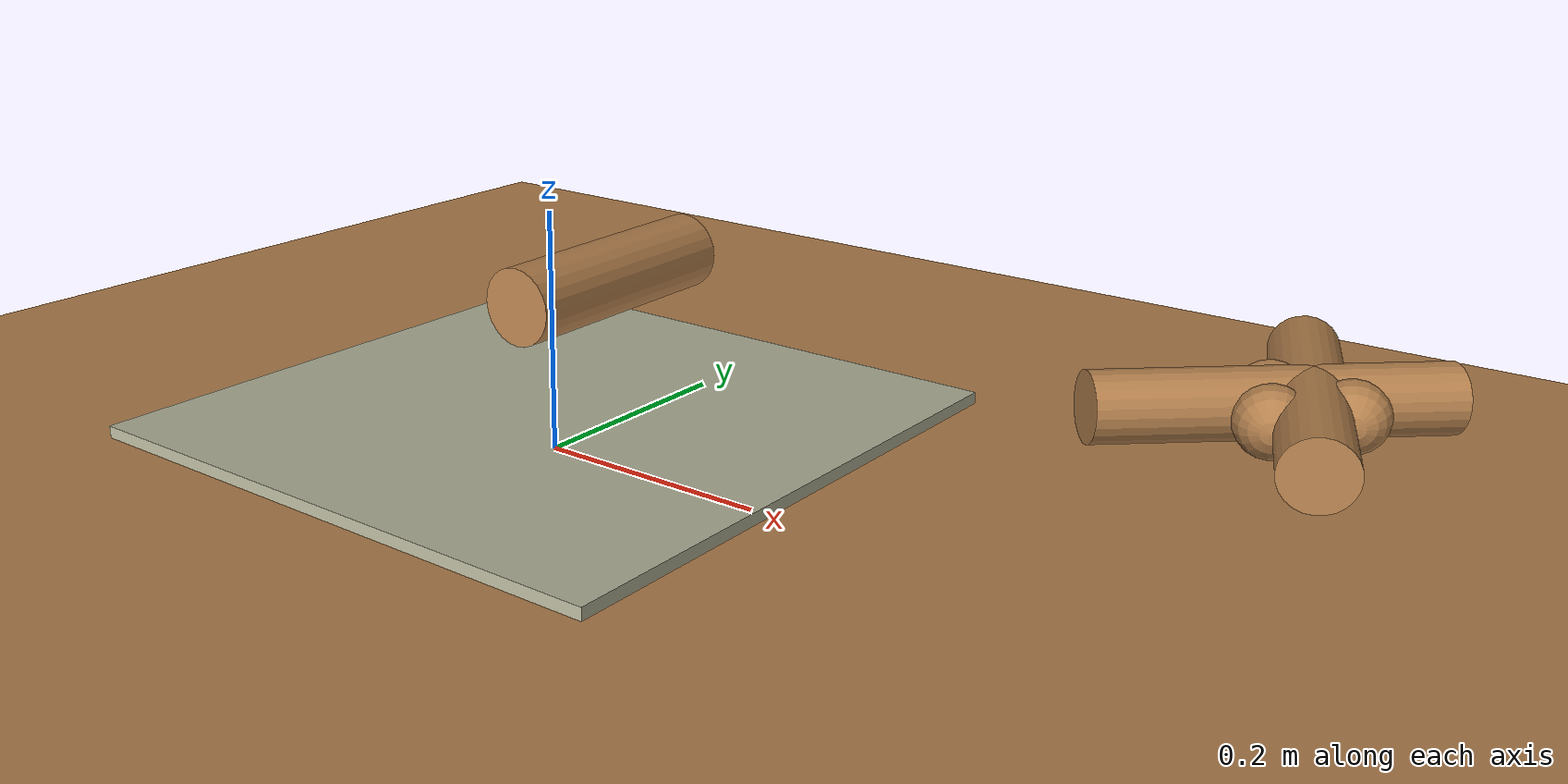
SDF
<?xml version="1.0" encoding="UTF-8"?>
<sdf version="1.4">
	<world name="default">
    <gui fullscreen='0'>
      <camera name='gzclient_camera'>
        <pose frame=''>0.59 -0.3 0.4 0 0.4 2.7</pose>
        <view_controller>orbit</view_controller>
        <projection_type>perspective</projection_type>
      </camera>
    </gui>
    <physics type="ode">
      <gravity>0.000000 0.000000 0.00</gravity>
      <ode>
        <solver>
         <type>quick</type>
         <iters>50</iters>
         <precon_iters>0</precon_iters>
         <sor>1.300000</sor>
       </solver>
       <constraints>
         <!-- cfm: Between 0.0001 and 0.001 works well (0.001 allows a bit too much elasticity)-->
         <!-- contact_max_correcting_vel: 	Max vel that contacts can generate-->
         <!-- contact_surface_layer: 		Increasing  may improve sensibility-->
       </constraints>
     </ode>
     <max_contacts>1</max_contacts>
   </physics>

   <include>
     <uri>model://sun</uri>
   </include>

   <model name ='table'>
     <static>true</static>
     <pose>0 0 0.01 0 0 0</pose>
     <link name ='table_link'>
      <pose>0 0 0 0 0 0</pose>
      <collision name ='collision'>
       <geometry>
        <box><size>3 3 0.019</size></box>
      </geometry>
    </collision>
    <visual name ='visual'>
     <geometry>
      <box><size>3 3  0.019</size></box>
    </geometry>

    <material><script><uri>file://media/materials/scripts/gazebo.material</uri>
    <name>Gazebo/Wood</name></script></material>
  </visual>

</link>
</model>

<model name ='support'>
 <static>true</static>
 <pose>0.0 0 0.03 0 0 0</pose>
 <link name ='table_link'>
  <pose>0 0 0 0 0 0</pose>
  <collision name ='collision'>
   <geometry><box><size>0.5 0.5 0.01</size></box></geometry>
   <surface>
    <friction><ode><mu>0.1</mu><mu2>0.1</mu2></ode></friction>
    <contact><ode><kp>400000</kp></ode></contact>
  </surface>
</collision>
<visual name ='visual'>
 <geometry>
  <box><size>0.5 0.5 0.01</size></box>
</geometry>

<material><script><uri>file://media/materials/scripts/gazebo.material</uri>
<name>Gazebo/Residential</name></script></material>
</visual>

</link>
</model>

<!-- OBJECT TO GRASP -->
<!-- it has a plugin to have an impedance -->
<model name="cylinderHandle">
  <pose>0.057 0.0 0.157 1.577 0 0</pose>
  <static>false</static>
  <link name="left_wheel">
    <pose>0 0 0 0 0 0</pose>

    <collision name="collision">
      <geometry>
        <cylinder>
          <radius>.03</radius>
          <length>.2</length>
        </cylinder>
      </geometry>
    </collision>

    <inertial>
      <mass>5</mass>
      <inertia>
        <ixx>0.015</ixx>
        <ixy>0</ixy>
        <ixz>0</ixz>
        <iyy>0.015</iyy>
        <iyz>0</iyz>
        <izz>0.001</izz>
      </inertia>
    </inertial>

    <visual name="visual">
      <geometry>
        <cylinder>
          <radius>.03</radius>
          <length>0.2</length>
        </cylinder>S
      </geometry>
      <material><script><uri>file://media/materials/scripts/gazebo.material</uri>
      <name>Gazebo/Wood</name></script></material>
    </visual>
  </link>

  <plugin name="my_object_impedance_plugin" filename="libmy_object_impedance_plugin.so" >
    <topicName> /gazebo/object_impedance2 </topicName>
    <bodyNames>left_wheel</bodyNames>
    <resetThreshold>0.02</resetThreshold>
  </plugin>

  <plugin name="mylinkforce2" filename="libgazebo_ros_force2.so">
    <bodyNames>left_wheel</bodyNames>
  </plugin>

</model>

<!-- weird little shape to grasp. -->
<model name="shapetoExplore3">
  <pose>0.60 -0.08 0.21 0.0 1.57 0</pose>
  <include>
    <uri>model://shapeToExplore3</uri>
  </include>
  <plugin name="my_object_impedance_plugin" filename="libmy_object_impedance_plugin.so" >
    <topicName> /gazebo/object_impedance </topicName>
    <bodyNames> shapetoExplore3::sphere1 </bodyNames>
    <resetThreshold>0.02</resetThreshold>
  </plugin>

    <plugin name="mylinkforce2" filename="libgazebo_ros_force2.so">
    <bodyNames>shapetoExplore3::sphere1</bodyNames>
  </plugin>
</model>

</world>
</sdf>

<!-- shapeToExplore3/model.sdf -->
<sdf version='1.5'>

  <model name ="shapetoExplore3">
   <static>false</static>
   <pose>0.0 0.0 0.0 1.2 0 0</pose>

   <link name ='sphere1'>
    <pose>0 0.0 0.01 0 0 0</pose>
    <collision name ='collision'>
     <geometry><sphere><radius>0.02</radius></sphere></geometry>
   </collision>

     <inertial>
      <mass>0.1</mass>
      <inertia>
        <ixx>0.0001</ixx>
        <ixy>0</ixy>
        <ixz>0</ixz>
        <iyy>0.0001</iyy>
        <iyz>0</iyz>
        <izz>0.0001</izz>
      </inertia>
    </inertial>

   <visual name ='visual'>
     <geometry><sphere><radius>0.02</radius></sphere></geometry>
     <material>
      <script>
       <uri>file://media/materials/scripts/gazebo.material</uri>
       <name>Gazebo/Wood</name>
     </script>
   </material>
 </visual>
</link>

<link name ='sphere2'>
  <pose>0 0.0 0.05 0 0 0</pose>
  <collision name ='collision'>
   <geometry><sphere><radius>0.02</radius></sphere></geometry>
 </collision>

     <inertial>
      <mass>0.1</mass>
      <inertia>
        <ixx>0.0001</ixx>
        <ixy>0</ixy>
        <ixz>0</ixz>
        <iyy>0.0001</iyy>
        <iyz>0</iyz>
        <izz>0.0001</izz>
      </inertia>
    </inertial>

 <visual name ='visual'>
   <geometry><sphere><radius>0.02</radius></sphere></geometry>
   <material>
    <script>
     <uri>file://media/materials/scripts/gazebo.material</uri>
     <name>Gazebo/Wood</name>
   </script>
 </material>
</visual>
</link>

<link name ='cyl1'>
  <pose>0 0.02 0.02 0 0 0</pose>
  <collision name ='collision'>
   <geometry><cylinder><radius>0.02</radius><length>0.2</length></cylinder></geometry>
 </collision>

     <inertial>
      <mass>0.1</mass>
      <inertia>
        <ixx>0.0001</ixx>
        <ixy>0</ixy>
        <ixz>0</ixz>
        <iyy>0.0001</iyy>
        <iyz>0</iyz>
        <izz>0.0001</izz>
      </inertia>
    </inertial>

 <visual name ='visual'>
   <geometry><cylinder><radius>0.02</radius><length>0.2</length></cylinder></geometry>
   <material>
    <script>
     <uri>file://media/materials/scripts/gazebo.material</uri>
     <name>Gazebo/Wood</name>
   </script>
 </material>
</visual>
</link>

<link name ='sphere3'>
  <pose>0 0.04 0.03 0 0 0</pose>
  <collision name ='collision'>
   <geometry><sphere><radius>0.02</radius></sphere></geometry>
 </collision>

      <inertial>
      <mass>0.1</mass>
      <inertia>
        <ixx>0.0001</ixx>
        <ixy>0</ixy>
        <ixz>0</ixz>
        <iyy>0.0001</iyy>
        <iyz>0</iyz>
        <izz>0.0001</izz>
      </inertia>
    </inertial>

 <visual name ='visual'>
   <geometry><sphere><radius>0.02</radius></sphere></geometry>
   <material>
    <script>
     <uri>file://media/materials/scripts/gazebo.material</uri>
     <name>Gazebo/Wood</name>
   </script>
 </material>
</visual>
</link>

<link name ='cyl2'>
  <pose>0 0.0 0.02 1.2 0 0</pose>
  <collision name ='collision'>
   <geometry><cylinder><radius>0.02</radius><length>0.2</length></cylinder></geometry>
 </collision>

     <inertial>
      <mass>0.1</mass>
      <inertia>
        <ixx>0.0001</ixx>
        <ixy>0</ixy>
        <ixz>0</ixz>
        <iyy>0.0001</iyy>
        <iyz>0</iyz>
        <izz>0.0001</izz>
      </inertia>
    </inertial>

 <visual name ='visual'>
   <geometry><cylinder><radius>0.02</radius><length>0.2</length></cylinder></geometry>
   <material>
    <script>
     <uri>file://media/materials/scripts/gazebo.material</uri>
     <name>Gazebo/Wood</name>
   </script>
 </material>
</visual>
</link>

<joint name="joint1" type="fixed">
  <parent>sphere1</parent>
  <child>sphere2</child>
</joint>
<joint name="joint2" type="fixed">
  <parent>sphere1</parent>
  <child>sphere3</child>
</joint>
<joint name="joint3" type="fixed">
  <parent>sphere1</parent>
  <child>cyl1</child>
</joint>
<joint name="joint4" type="fixed">
  <parent>sphere1</parent>
  <child>cyl2</child>
</joint>

</model>
</sdf>
